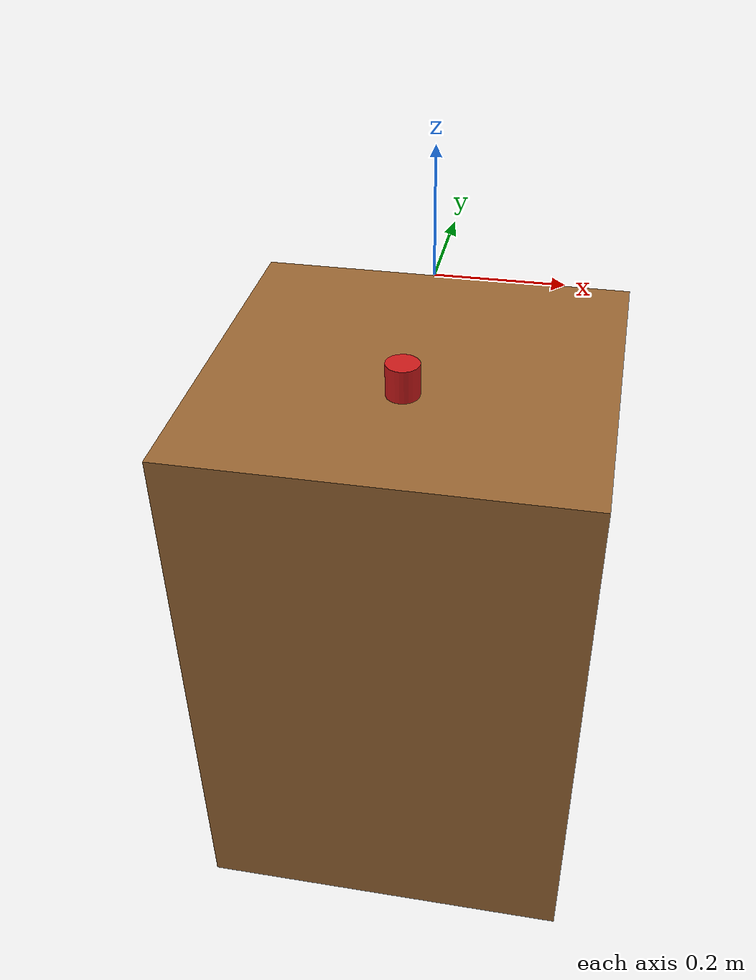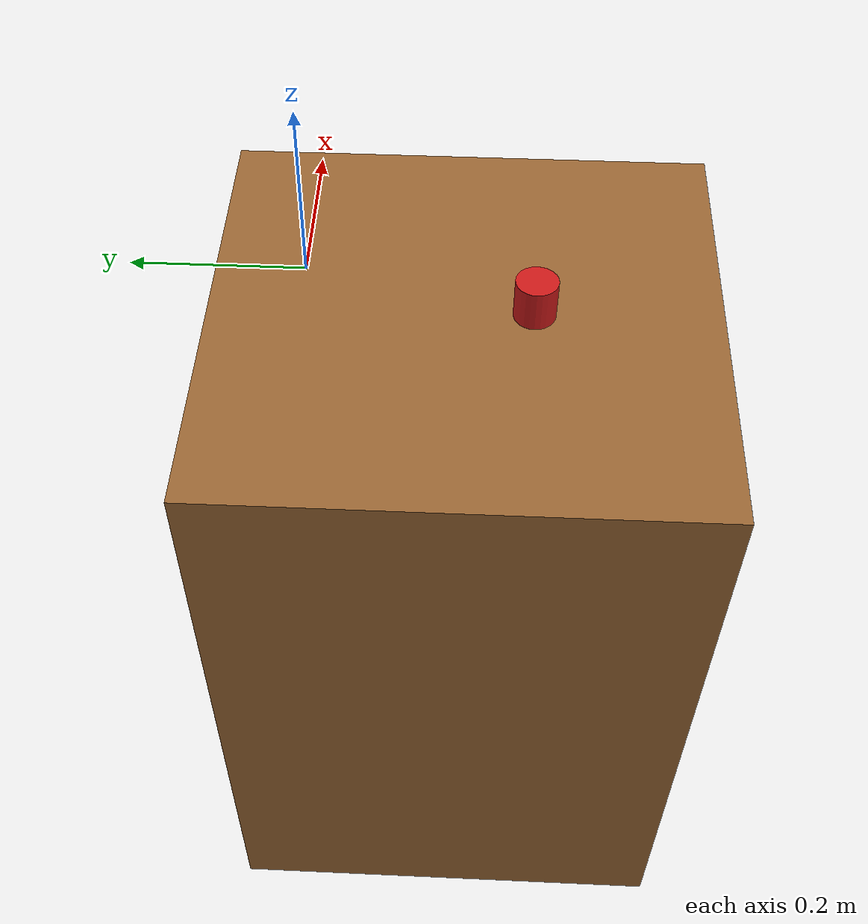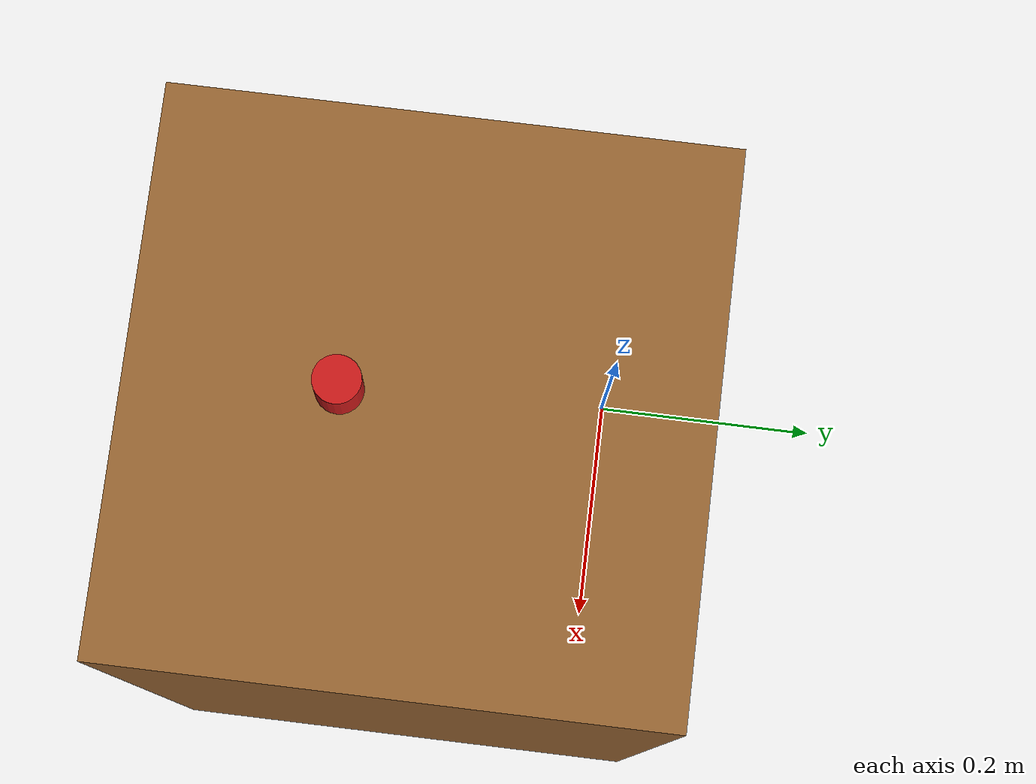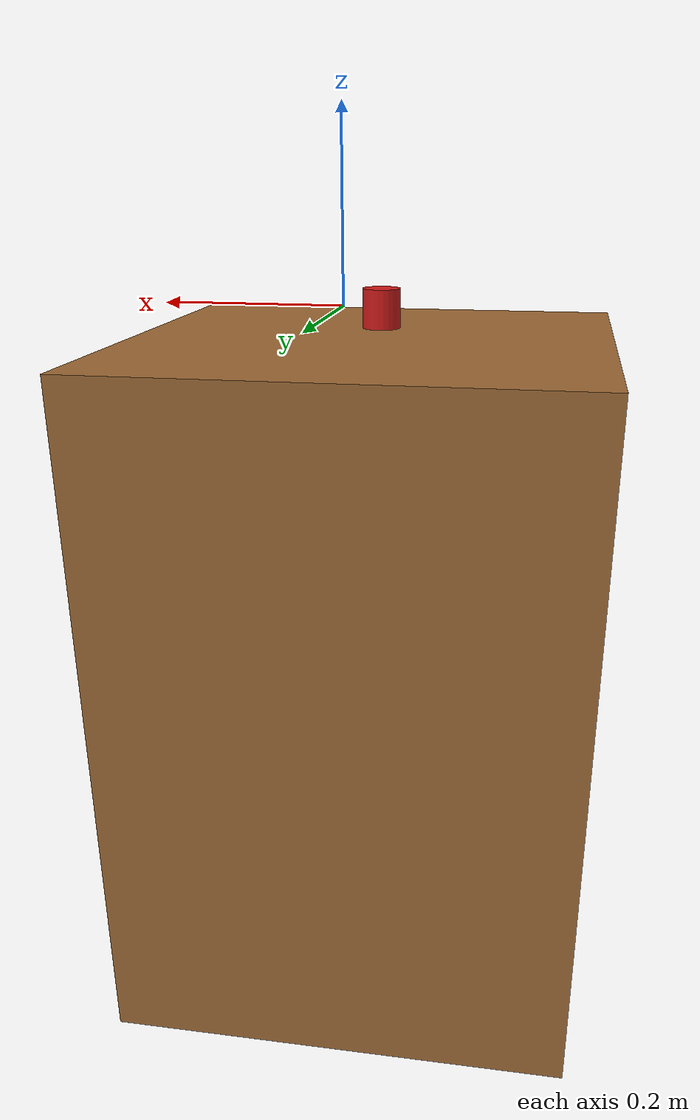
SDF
<?xml version="1.0" ?>
<sdf version="1.8">
  <world name="arm_world">

    <!-- ── Physics ─────────────────────────────────────────────────── -->
    <plugin
        filename="gz-sim-physics-system"
        name="gz::sim::systems::Physics">
    </plugin>
    <physics name="1ms" type="ode">
      <max_step_size>0.001</max_step_size>
      <real_time_factor>1.0</real_time_factor>
    </physics>

    <!-- ── Scene infrastructure ─────────────────────────────────────── -->
    <plugin
        filename="gz-sim-scene-broadcaster-system"
        name="gz::sim::systems::SceneBroadcaster">
    </plugin>
    <plugin
        filename="gz-sim-user-commands-system"
        name="gz::sim::systems::UserCommands">
    </plugin>
    <plugin
        filename="gz-sim-sensors-system"
        name="gz::sim::systems::Sensors">
      <render_engine>ogre2</render_engine>
    </plugin>
    <plugin
        filename="gz-sim-contact-system"
        name="gz::sim::systems::Contact">
    </plugin>

    <!-- ── Lighting ─────────────────────────────────────────────────── -->
    <light type="directional" name="sun">
      <cast_shadows>true</cast_shadows>
      <pose>0 0 10 0 0 0</pose>
      <diffuse>0.8 0.8 0.8 1</diffuse>
      <specular>0.2 0.2 0.2 1</specular>
      <attenuation>
        <range>1000</range>
        <constant>0.9</constant>
        <linear>0.01</linear>
        <quadratic>0.001</quadratic>
      </attenuation>
      <direction>-0.5 0.1 -0.9</direction>
    </light>

    <!-- ── Ground plane ─────────────────────────────────────────────── -->
    <model name="ground_plane">
      <static>true</static>
      <link name="link">
        <collision name="collision">
          <geometry>
            <plane>
              <normal>0 0 1</normal>
              <size>100 100</size>
            </plane>
          </geometry>
        </collision>
        <visual name="visual">
          <geometry>
            <plane>
              <normal>0 0 1</normal>
              <size>100 100</size>
            </plane>
          </geometry>
          <material>
            <ambient>0.8 0.8 0.8 1</ambient>
            <diffuse>0.8 0.8 0.8 1</diffuse>
            <specular>0.8 0.8 0.8 1</specular>
          </material>
        </visual>
      </link>
    </model>

    <!-- ── Table surface (arm at near edge) ─────────────── -->
    <!-- The arm's base_link sits at the origin (0,0,0).
         Table surface top is at z=-0.06 m. -->
    <model name="table">
      <static>true</static>
      <pose>0 -0.18 -0.50 0 0 0</pose>
      <link name="link">
        <collision name="collision">
          <pose>0 0 0 0 0 0</pose>
          <geometry>
            <box>
              <size>0.6 0.6 0.88</size>
            </box>
          </geometry>
        </collision>
        <visual name="visual">
          <pose>0 0 0 0 0 0</pose>
          <geometry>
            <box>
              <size>0.6 0.6 0.88</size>
            </box>
          </geometry>
          <material>
            <ambient>0.6 0.4 0.2 1</ambient>
            <diffuse>0.6 0.4 0.2 1</diffuse>
          </material>
        </visual>
      </link>
    </model>

    <!-- ── Target object (grasping target placeholder) ───────────────── -->
    <!-- A small red cylinder representing the object to be grasped.
         Replace with your actual object model for imitation learning tasks. -->
    <model name="target_object">
      <pose>0 -0.26 -0.033 0 0 0</pose>
      <link name="link">
        <inertial>
          <mass>0.05</mass>
          <inertia>
            <ixx>1.4e-5</ixx><ixy>0</ixy><ixz>0</ixz>
            <iyy>1.4e-5</iyy><iyz>0</iyz>
            <izz>6.25e-6</izz>
          </inertia>
        </inertial>
        <collision name="collision">
          <geometry>
            <cylinder>
              <radius>0.025</radius>
              <length>0.05</length>
            </cylinder>
          </geometry>
        </collision>
        <visual name="visual">
          <geometry>
            <cylinder>
              <radius>0.025</radius>
              <length>0.05</length>
            </cylinder>
          </geometry>
          <material>
            <ambient>0.8 0.1 0.1 1</ambient>
            <diffuse>0.8 0.1 0.1 1</diffuse>
          </material>
        </visual>
      </link>
    </model>

  </world>
</sdf>
